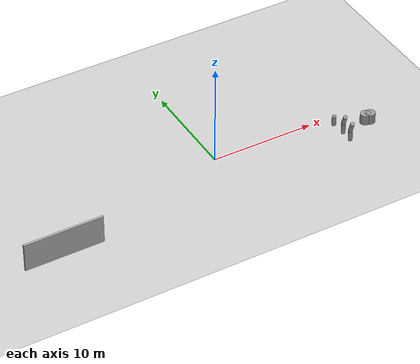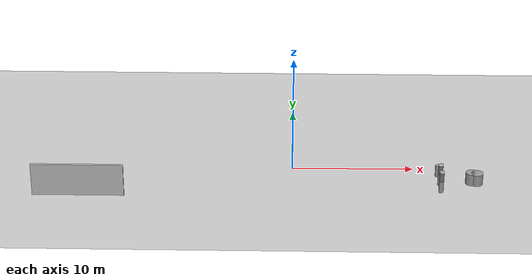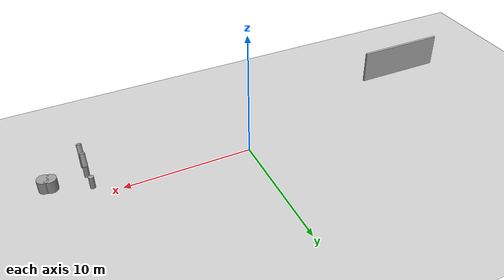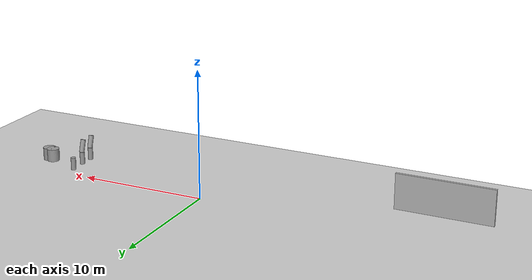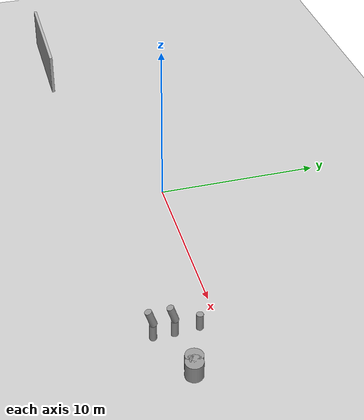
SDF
<sdf version="1.7">
 <world name="default">
  <light name="sun" type="directional">
   <pose>0 0 10 0 -0 0</pose>
   <diffuse>0.8 0.8 0.8 1</diffuse>
   <specular>0.2 0.2 0.2 1</specular>
   <attenuation>
    <range>1000</range>
    <constant>0.9</constant>
    <linear>0.01</linear>
    <quadratic>0.001</quadratic>
   </attenuation>
   <direction>-0.5 0.1 -0.9</direction>
   <spot><inner_angle>0</inner_angle><outer_angle>0</outer_angle><falloff>0</falloff></spot>
  </light>
  <model name="ground_plane">
   <static>1</static>
   <link name="link">
    <collision name="collision">
     <geometry><plane><normal>0 0 1</normal><size>100 100</size></plane></geometry>
     <surface><friction><ode><mu>100</mu><mu2>50</mu2></ode></friction></surface>
    </collision>
    <visual name="visual">
     <cast_shadows>0</cast_shadows>
     <geometry><plane><normal>0 0 1</normal><size>100 100</size></plane></geometry>
     <material>
      <script><uri>file://media/materials/scripts/gazebo.material</uri><name>Gazebo/Grey</name></script>
     </material>
    </visual>
   </link>
  </model>
  <gravity>0 0 -9.8</gravity>
  <magnetic_field>6e-06 2.3e-05 -4.2e-05</magnetic_field>
  <atmosphere type="adiabatic"/>
  <physics type="ode">
   <max_step_size>0.001</max_step_size>
   <real_time_factor>1</real_time_factor>
   <real_time_update_rate>1000</real_time_update_rate>
  </physics>
  <scene><ambient>0.4 0.4 0.4 1</ambient><background>0.7 0.7 0.7 1</background><shadows>1</shadows></scene>
  <audio><device>default</device></audio>
  <spherical_coordinates>
   <surface_model>EARTH_WGS84</surface_model>
   <latitude_deg>0</latitude_deg>
   <longitude_deg>0</longitude_deg>
   <elevation>0</elevation>
   <heading_deg>0</heading_deg>
  </spherical_coordinates>
  <model name="grey_wall">
   <static>1</static>
   <link name="link">
    <pose>0 0 1.4 0 -0 0</pose>
    <collision name="collision"><geometry><box><size>7.5 0.2 2.8</size></box></geometry></collision>
    <visual name="visual">
     <cast_shadows>0</cast_shadows>
     <geometry><box><size>7.5 0.2 2.8</size></box></geometry>
     <material>
      <script>
       <uri>model://crack_sim/materials/scripts</uri>
       <uri>model://crack_sim/materials/textures</uri>
       <name>crack_sim/diffuse</name>
      </script>
     </material>
    </visual>
   </link>
   <pose>-17.4478 -4.66681 0 0 -0 0</pose>
  </model>
  <model name="unit_cylinder">
   <pose>15.1379 -2.24873 0.5 0 -0 0</pose>
   <link name="link">
    <inertial>
     <mass>1</mass>
     <inertia><ixx>0.145833</ixx><ixy>0</ixy><ixz>0</ixz><iyy>0.145833</iyy><iyz>0</iyz><izz>0.125</izz></inertia>
    </inertial>
    <collision name="collision">
     <geometry><cylinder><radius>0.5</radius><length>1</length></cylinder></geometry>
    </collision>
    <visual name="visual">
     <geometry><cylinder><radius>0.5</radius><length>1</length></cylinder></geometry>
     <material>
      <script><name>Gazebo/Grey</name><uri>file://media/materials/scripts/gazebo.material</uri></script>
     </material>
    </visual>
   </link>
  </model>
  <model name="unit_cylinder_0">
   <pose>14.7108 -2.13496 0.5 0 -0 0</pose>
   <link name="link">
    <inertial>
     <mass>1</mass>
     <inertia><ixx>0.145833</ixx><ixy>0</ixy><ixz>0</ixz><iyy>0.145833</iyy><iyz>0</iyz><izz>0.125</izz></inertia>
    </inertial>
    <collision name="collision">
     <geometry><cylinder><radius>0.5</radius><length>1</length></cylinder></geometry>
    </collision>
    <visual name="visual">
     <geometry><cylinder><radius>0.5</radius><length>1</length></cylinder></geometry>
     <material>
      <script><name>Gazebo/Grey</name><uri>file://media/materials/scripts/gazebo.material</uri></script>
     </material>
    </visual>
   </link>
  </model>
  <model name="beam2_white">
   <link name="link">
    <inertial>
     <mass>1</mass>
     <inertia><ixx>0.145833</ixx><ixy>0</ixy><ixz>0</ixz><iyy>0.145833</iyy><iyz>0</iyz><izz>0.125</izz></inertia>
    </inertial>
    <visual name="visual">
     <geometry><cylinder><radius>0.2</radius><length>1</length></cylinder></geometry>
     <material>
      <script><name>Gazebo/Grey</name><uri>file://media/materials/scripts/gazebo.material</uri></script>
      <shader type="pixel"><normal_map>__default__</normal_map></shader>
      <ambient>1 1 1 1</ambient>
      <diffuse>1 1 1 1</diffuse>
      <specular>0.871 0.867 0.855 1</specular>
      <emissive>0 0 0 1</emissive>
     </material>
    </visual>
    <collision name="collision">
     <geometry><cylinder><radius>0.5</radius><length>1</length></cylinder></geometry>
     <surface>
      <friction>
       <ode><mu>1</mu><mu2>1</mu2><fdir1>0 0 0</fdir1><slip1>0</slip1><slip2>0</slip2></ode>
       <torsional>
        <coefficient>1</coefficient>
        <patch_radius>0</patch_radius>
        <surface_radius>0</surface_radius>
        <use_patch_radius>1</use_patch_radius>
        <ode><slip>0</slip></ode>
       </torsional>
      </friction>
      <bounce><restitution_coefficient>0</restitution_coefficient><threshold>1e+06</threshold></bounce>
      <contact>
       <collide_without_contact>0</collide_without_contact>
       <collide_without_contact_bitmask>1</collide_without_contact_bitmask>
       <collide_bitmask>1</collide_bitmask>
       <ode>
        <soft_cfm>0</soft_cfm>
        <soft_erp>0.2</soft_erp>
        <kp>1e+13</kp>
        <kd>1</kd>
        <max_vel>0.01</max_vel>
        <min_depth>0</min_depth>
       </ode>
       <bullet>
        <split_impulse>1</split_impulse>
        <split_impulse_penetration_threshold>-0.01</split_impulse_penetration_threshold>
        <soft_cfm>0</soft_cfm>
        <soft_erp>0.2</soft_erp>
        <kp>1e+13</kp>
        <kd>1</kd>
       </bullet>
      </contact>
     </surface>
    </collision>
   </link>
   <static>0</static>
   <pose>12.1034 -2.55519 1.5 0.3 -0 0</pose>
  </model>
  <model name="beam2_clone">
   <link name="link">
    <inertial>
     <mass>1</mass>
     <inertia><ixx>0.145833</ixx><ixy>0</ixy><ixz>0</ixz><iyy>0.145833</iyy><iyz>0</iyz><izz>0.125</izz></inertia>
    </inertial>
    <visual name="visual">
     <geometry><cylinder><radius>0.2</radius><length>1</length></cylinder></geometry>
     <material>
      <script><name>Gazebo/Grey</name><uri>file://media/materials/scripts/gazebo.material</uri></script>
      <shader type="pixel"><normal_map>__default__</normal_map></shader>
      <ambient>1 1 1 1</ambient>
      <diffuse>1 1 1 1</diffuse>
      <specular>1 1 1 1</specular>
      <emissive>0 0 0 1</emissive>
     </material>
    </visual>
    <collision name="collision">
     <geometry><cylinder><radius>0.5</radius><length>1</length></cylinder></geometry>
     <surface>
      <friction>
       <ode><mu>1</mu><mu2>1</mu2><fdir1>0 0 0</fdir1><slip1>0</slip1><slip2>0</slip2></ode>
       <torsional>
        <coefficient>1</coefficient>
        <patch_radius>0</patch_radius>
        <surface_radius>0</surface_radius>
        <use_patch_radius>1</use_patch_radius>
        <ode><slip>0</slip></ode>
       </torsional>
      </friction>
      <bounce><restitution_coefficient>0</restitution_coefficient><threshold>1e+06</threshold></bounce>
      <contact>
       <collide_without_contact>0</collide_without_contact>
       <collide_without_contact_bitmask>1</collide_without_contact_bitmask>
       <collide_bitmask>1</collide_bitmask>
       <ode>
        <soft_cfm>0</soft_cfm>
        <soft_erp>0.2</soft_erp>
        <kp>1e+13</kp>
        <kd>1</kd>
        <max_vel>0.01</max_vel>
        <min_depth>0</min_depth>
       </ode>
       <bullet>
        <split_impulse>1</split_impulse>
        <split_impulse_penetration_threshold>-0.01</split_impulse_penetration_threshold>
        <soft_cfm>0</soft_cfm>
        <soft_erp>0.2</soft_erp>
        <kp>1e+13</kp>
        <kd>1</kd>
       </bullet>
      </contact>
     </surface>
    </collision>
   </link>
   <static>0</static>
   <pose>12.1034 -3.73061 1.5 0.3 -0 0</pose>
  </model>
  <model name="beam1_clone">
   <link name="link">
    <inertial>
     <mass>1</mass>
     <inertia><ixx>0.145833</ixx><ixy>0</ixy><ixz>0</ixz><iyy>0.145833</iyy><iyz>0</iyz><izz>0.125</izz></inertia>
    </inertial>
    <visual name="visual">
     <geometry><cylinder><radius>0.2</radius><length>1</length></cylinder></geometry>
     <material>
      <script><name>Gazebo/Grey</name><uri>file://media/materials/scripts/gazebo.material</uri></script>
      <shader type="pixel"><normal_map>__default__</normal_map></shader>
      <ambient>1 1 1 1</ambient>
      <diffuse>1 1 1 1</diffuse>
      <specular>1 1 1 1</specular>
      <emissive>0 0 0 1</emissive>
     </material>
    </visual>
    <collision name="collision">
     <geometry><cylinder><radius>0.5</radius><length>1</length></cylinder></geometry>
     <surface>
      <friction>
       <ode><mu>1</mu><mu2>1</mu2><fdir1>0 0 0</fdir1><slip1>0</slip1><slip2>0</slip2></ode>
       <torsional>
        <coefficient>1</coefficient>
        <patch_radius>0</patch_radius>
        <surface_radius>0</surface_radius>
        <use_patch_radius>1</use_patch_radius>
        <ode><slip>0</slip></ode>
       </torsional>
      </friction>
      <bounce><restitution_coefficient>0</restitution_coefficient><threshold>1e+06</threshold></bounce>
      <contact>
       <collide_without_contact>0</collide_without_contact>
       <collide_without_contact_bitmask>1</collide_without_contact_bitmask>
       <collide_bitmask>1</collide_bitmask>
       <ode>
        <soft_cfm>0</soft_cfm>
        <soft_erp>0.2</soft_erp>
        <kp>1e+13</kp>
        <kd>1</kd>
        <max_vel>0.01</max_vel>
        <min_depth>0</min_depth>
       </ode>
       <bullet>
        <split_impulse>1</split_impulse>
        <split_impulse_penetration_threshold>-0.01</split_impulse_penetration_threshold>
        <soft_cfm>0</soft_cfm>
        <soft_erp>0.2</soft_erp>
        <kp>1e+13</kp>
        <kd>1</kd>
       </bullet>
      </contact>
     </surface>
    </collision>
   </link>
   <static>0</static>
   <pose>12.1034 -3.63061 0.500001 0 -0 6e-06</pose>
  </model>
  <model name="beam1_">
   <link name="link">
    <inertial>
     <mass>1</mass>
     <inertia><ixx>0.145833</ixx><ixy>0</ixy><ixz>0</ixz><iyy>0.145833</iyy><iyz>0</iyz><izz>0.125</izz></inertia>
    </inertial>
    <visual name="visual">
     <geometry><cylinder><radius>0.2</radius><length>1</length></cylinder></geometry>
     <material>
      <script><name>Gazebo/Grey</name><uri>file://media/materials/scripts/gazebo.material</uri></script>
      <shader type="pixel"><normal_map>__default__</normal_map></shader>
      <ambient>1 1 1 1</ambient>
      <diffuse>1 1 1 1</diffuse>
      <specular>1 1 1 1</specular>
      <emissive>0 0 0 1</emissive>
     </material>
    </visual>
    <collision name="collision">
     <geometry><cylinder><radius>0.5</radius><length>1</length></cylinder></geometry>
     <surface>
      <friction>
       <ode><mu>1</mu><mu2>1</mu2><fdir1>0 0 0</fdir1><slip1>0</slip1><slip2>0</slip2></ode>
       <torsional>
        <coefficient>1</coefficient>
        <patch_radius>0</patch_radius>
        <surface_radius>0</surface_radius>
        <use_patch_radius>1</use_patch_radius>
        <ode><slip>0</slip></ode>
       </torsional>
      </friction>
      <bounce><restitution_coefficient>0</restitution_coefficient><threshold>1e+06</threshold></bounce>
      <contact>
       <collide_without_contact>0</collide_without_contact>
       <collide_without_contact_bitmask>1</collide_without_contact_bitmask>
       <collide_bitmask>1</collide_bitmask>
       <ode>
        <soft_cfm>0</soft_cfm>
        <soft_erp>0.2</soft_erp>
        <kp>1e+13</kp>
        <kd>1</kd>
        <max_vel>0.01</max_vel>
        <min_depth>0</min_depth>
       </ode>
       <bullet>
        <split_impulse>1</split_impulse>
        <split_impulse_penetration_threshold>-0.01</split_impulse_penetration_threshold>
        <soft_cfm>0</soft_cfm>
        <soft_erp>0.2</soft_erp>
        <kp>1e+13</kp>
        <kd>1</kd>
       </bullet>
      </contact>
     </surface>
    </collision>
   </link>
   <static>0</static>
   <pose>12.1034 -2.45519 0.500001 1e-06 -0 6e-06</pose>
  </model>
  <model name="unit_cylinder_1_">
   <link name="link">
    <inertial>
     <mass>1</mass>
     <inertia><ixx>0.145833</ixx><ixy>0</ixy><ixz>0</ixz><iyy>0.145833</iyy><iyz>0</iyz><izz>0.125</izz></inertia>
    </inertial>
    <visual name="visual">
     <geometry><cylinder><radius>0.2</radius><length>1</length></cylinder></geometry>
     <material>
      <script><name>Gazebo/Grey</name><uri>file://media/materials/scripts/gazebo.material</uri></script>
      <shader type="pixel"><normal_map>__default__</normal_map></shader>
      <ambient>1 1 1 1</ambient>
      <diffuse>1 1 1 1</diffuse>
      <specular>1 1 1 1</specular>
      <emissive>0 0 0 1</emissive>
     </material>
    </visual>
    <collision name="collision">
     <geometry><cylinder><radius>0.5</radius><length>1</length></cylinder></geometry>
     <surface>
      <friction>
       <ode><mu>1</mu><mu2>1</mu2><fdir1>0 0 0</fdir1><slip1>0</slip1><slip2>0</slip2></ode>
       <torsional>
        <coefficient>1</coefficient>
        <patch_radius>0</patch_radius>
        <surface_radius>0</surface_radius>
        <use_patch_radius>1</use_patch_radius>
        <ode><slip>0</slip></ode>
       </torsional>
      </friction>
      <bounce><restitution_coefficient>0</restitution_coefficient><threshold>1e+06</threshold></bounce>
      <contact>
       <collide_without_contact>0</collide_without_contact>
       <collide_without_contact_bitmask>1</collide_without_contact_bitmask>
       <collide_bitmask>1</collide_bitmask>
       <ode>
        <soft_cfm>0</soft_cfm>
        <soft_erp>0.2</soft_erp>
        <kp>1e+13</kp>
        <kd>1</kd>
        <max_vel>0.01</max_vel>
        <min_depth>0</min_depth>
       </ode>
       <bullet>
        <split_impulse>1</split_impulse>
        <split_impulse_penetration_threshold>-0.01</split_impulse_penetration_threshold>
        <soft_cfm>0</soft_cfm>
        <soft_erp>0.2</soft_erp>
        <kp>1e+13</kp>
        <kd>1</kd>
       </bullet>
      </contact>
     </surface>
    </collision>
   </link>
   <static>0</static>
   <pose>11.9984 -1.04272 0.5 0 -0 0</pose>
  </model>
 </world>
</sdf>
